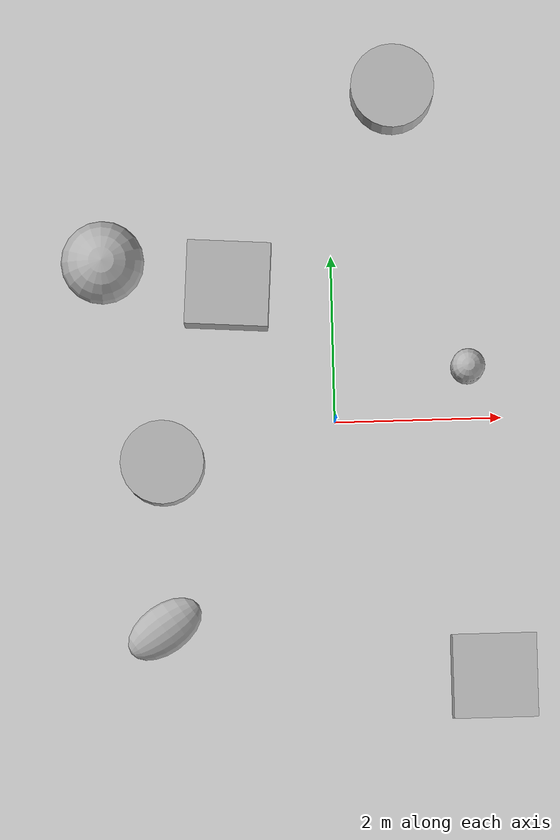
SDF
<sdf version='1.9'>
  <world name='empty'>
    <physics name='1ms' type='ignored'>
      <max_step_size>0.001</max_step_size>
      <real_time_factor>1</real_time_factor>
      <real_time_update_rate>1000</real_time_update_rate>
    </physics>
    <plugin name='gz::sim::systems::Physics' filename='ignition-gazebo-physics-system'/>
    <plugin name='gz::sim::systems::UserCommands' filename='ignition-gazebo-user-commands-system'/>
    <plugin name='gz::sim::systems::SceneBroadcaster' filename='ignition-gazebo-scene-broadcaster-system'/>
    <plugin name='gz::sim::systems::Contact' filename='ignition-gazebo-contact-system'/>
    <gravity>0 0 -9.8</gravity>
    <magnetic_field>6e-06 2.3e-05 -4.2e-05</magnetic_field>
    <atmosphere type='adiabatic'/>
    <scene>
      <ambient>0.4 0.4 0.4 1</ambient>
      <background>0.7 0.7 0.7 1</background>
      <shadows>true</shadows>
    </scene>
    <model name='ground_plane'>
      <static>true</static>
      <link name='link'>
        <collision name='collision'>
          <geometry>
            <plane>
              <normal>0 0 1</normal>
              <size>100 100</size>
            </plane>
          </geometry>
          <surface>
            <friction>
              <ode/>
            </friction>
            <bounce/>
            <contact/>
          </surface>
        </collision>
        <visual name='visual'>
          <geometry>
            <plane>
              <normal>0 0 1</normal>
              <size>100 100</size>
            </plane>
          </geometry>
          <material>
            <ambient>0.8 0.8 0.8 1</ambient>
            <diffuse>0.8 0.8 0.8 1</diffuse>
            <specular>0.8 0.8 0.8 1</specular>
          </material>
        </visual>
        <pose>0 0 0 0 -0 0</pose>
        <inertial>
          <pose>0 0 0 0 -0 0</pose>
          <mass>1</mass>
          <inertia>
            <ixx>1</ixx>
            <ixy>0</ixy>
            <ixz>0</ixz>
            <iyy>1</iyy>
            <iyz>0</iyz>
            <izz>1</izz>
          </inertia>
        </inertial>
        <enable_wind>false</enable_wind>
      </link>
      <pose>0 0 0 0 -0 0</pose>
      <self_collide>false</self_collide>
    </model>
    <model name='box'>
      <pose>1.80987 -3.10131 0.5 0 0 -0</pose>
      <link name='box_link'>
        <inertial>
          <inertia>
            <ixx>0.16666</ixx>
            <ixy>0</ixy>
            <ixz>0</ixz>
            <iyy>0.16666</iyy>
            <iyz>0</iyz>
            <izz>0.16666</izz>
          </inertia>
          <mass>1</mass>
          <pose>0 0 0 0 -0 0</pose>
        </inertial>
        <collision name='box_collision'>
          <geometry>
            <box>
              <size>1 1 1</size>
            </box>
          </geometry>
          <surface>
            <friction>
              <ode/>
            </friction>
            <bounce/>
            <contact/>
          </surface>
        </collision>
        <visual name='box_visual'>
          <geometry>
            <box>
              <size>1 1 1</size>
            </box>
          </geometry>
          <material>
            <ambient>0.3 0.3 0.3 1</ambient>
            <diffuse>0.7 0.7 0.7 1</diffuse>
            <specular>1 1 1 1</specular>
          </material>
        </visual>
        <pose>0 0 0 0 -0 0</pose>
        <enable_wind>false</enable_wind>
      </link>
      <static>false</static>
      <self_collide>false</self_collide>
    </model>
    <model name='cylinder'>
      <pose>0.780227 3.95895 0.499999 -0 0 0</pose>
      <link name='cylinder_link'>
        <inertial>
          <inertia>
            <ixx>0.14580000000000001</ixx>
            <ixy>0</ixy>
            <ixz>0</ixz>
            <iyy>0.14580000000000001</iyy>
            <iyz>0</iyz>
            <izz>0.125</izz>
          </inertia>
          <mass>1</mass>
          <pose>0 0 0 0 -0 0</pose>
        </inertial>
        <collision name='cylinder_collision'>
          <geometry>
            <cylinder>
              <radius>0.5</radius>
              <length>1</length>
            </cylinder>
          </geometry>
          <surface>
            <friction>
              <ode/>
            </friction>
            <bounce/>
            <contact/>
          </surface>
        </collision>
        <visual name='cylinder_visual'>
          <geometry>
            <cylinder>
              <radius>0.5</radius>
              <length>1</length>
            </cylinder>
          </geometry>
          <material>
            <ambient>0.3 0.3 0.3 1</ambient>
            <diffuse>0.7 0.7 0.7 1</diffuse>
            <specular>1 1 1 1</specular>
          </material>
        </visual>
        <pose>0 0 0 0 -0 0</pose>
        <enable_wind>false</enable_wind>
      </link>
      <static>false</static>
      <self_collide>false</self_collide>
    </model>
    <model name='sphere'>
      <pose>-2.74347 1.96697 0.5 0 -0 0</pose>
      <link name='sphere_link'>
        <inertial>
          <inertia>
            <ixx>0.10000000000000001</ixx>
            <ixy>0</ixy>
            <ixz>0</ixz>
            <iyy>0.10000000000000001</iyy>
            <iyz>0</iyz>
            <izz>0.10000000000000001</izz>
          </inertia>
          <mass>1</mass>
          <pose>0 0 0 0 -0 0</pose>
        </inertial>
        <collision name='sphere_collision'>
          <geometry>
            <sphere>
              <radius>0.5</radius>
            </sphere>
          </geometry>
          <surface>
            <friction>
              <ode/>
            </friction>
            <bounce/>
            <contact/>
          </surface>
        </collision>
        <visual name='sphere_visual'>
          <geometry>
            <sphere>
              <radius>0.5</radius>
            </sphere>
          </geometry>
          <material>
            <ambient>0.3 0.3 0.3 1</ambient>
            <diffuse>0.7 0.7 0.7 1</diffuse>
            <specular>1 1 1 1</specular>
          </material>
        </visual>
        <pose>0 0 0 0 -0 0</pose>
        <enable_wind>false</enable_wind>
      </link>
      <static>false</static>
      <self_collide>false</self_collide>
    </model>
    <model name='ellipsoid'>
      <pose>-2.11576 -2.43835 0.186668 1.5708 -1.37749 -0.971127</pose>
      <link name='ellipsoid_link'>
        <inertial>
          <inertia>
            <ixx>0.068000000000000005</ixx>
            <ixy>0</ixy>
            <ixz>0</ixz>
            <iyy>0.058000000000000003</iyy>
            <iyz>0</iyz>
            <izz>0.025999999999999999</izz>
          </inertia>
          <mass>1</mass>
          <pose>0 0 0 0 -0 0</pose>
        </inertial>
        <collision name='ellipsoid_collision'>
          <geometry>
            <ellipsoid>
              <radii>0.2 0.3 0.5</radii>
            </ellipsoid>
          </geometry>
          <surface>
            <friction>
              <ode/>
            </friction>
            <bounce/>
            <contact/>
          </surface>
        </collision>
        <visual name='ellipsoid_visual'>
          <geometry>
            <ellipsoid>
              <radii>0.2 0.3 0.5</radii>
            </ellipsoid>
          </geometry>
          <material>
            <ambient>0.3 0.3 0.3 1</ambient>
            <diffuse>0.7 0.7 0.7 1</diffuse>
            <specular>1 1 1 1</specular>
          </material>
        </visual>
        <pose>0 0 0 0 -0 0</pose>
        <enable_wind>false</enable_wind>
      </link>
      <static>false</static>
      <self_collide>false</self_collide>
    </model>
    <model name='capsule'>
      <pose>1.59844 0.60418 0.5 0 -0 0</pose>
      <link name='capsule_link'>
        <inertial>
          <inertia>
            <ixx>0.074153999999999998</ixx>
            <ixy>0</ixy>
            <ixz>0</ixz>
            <iyy>0.074153999999999998</iyy>
            <iyz>0</iyz>
            <izz>0.018769000000000001</izz>
          </inertia>
          <mass>1</mass>
          <pose>0 0 0 0 -0 0</pose>
        </inertial>
        <collision name='capsule_collision'>
          <geometry>
            <capsule>
              <radius>0.20000000000000001</radius>
              <length>0.59999999999999998</length>
            </capsule>
          </geometry>
          <surface>
            <friction>
              <ode/>
            </friction>
            <bounce/>
            <contact/>
          </surface>
        </collision>
        <visual name='capsule_visual'>
          <geometry>
            <capsule>
              <radius>0.20000000000000001</radius>
              <length>0.59999999999999998</length>
            </capsule>
          </geometry>
          <material>
            <ambient>0.3 0.3 0.3 1</ambient>
            <diffuse>0.7 0.7 0.7 1</diffuse>
            <specular>1 1 1 1</specular>
          </material>
        </visual>
        <pose>0 0 0 0 -0 0</pose>
        <enable_wind>false</enable_wind>
      </link>
      <static>false</static>
      <self_collide>false</self_collide>
    </model>
    <model name='cylinder_0'>
      <pose>-2.08206 -0.460448 0.499999 0 -0 -0</pose>
      <link name='cylinder_link'>
        <inertial>
          <inertia>
            <ixx>0.14580000000000001</ixx>
            <ixy>0</ixy>
            <ixz>0</ixz>
            <iyy>0.14580000000000001</iyy>
            <iyz>0</iyz>
            <izz>0.125</izz>
          </inertia>
          <mass>1</mass>
          <pose>0 0 0 0 -0 0</pose>
        </inertial>
        <collision name='cylinder_collision'>
          <geometry>
            <cylinder>
              <radius>0.5</radius>
              <length>1</length>
            </cylinder>
          </geometry>
          <surface>
            <friction>
              <ode/>
            </friction>
            <bounce/>
            <contact/>
          </surface>
        </collision>
        <visual name='cylinder_visual'>
          <geometry>
            <cylinder>
              <radius>0.5</radius>
              <length>1</length>
            </cylinder>
          </geometry>
          <material>
            <ambient>0.3 0.3 0.3 1</ambient>
            <diffuse>0.7 0.7 0.7 1</diffuse>
            <specular>1 1 1 1</specular>
          </material>
        </visual>
        <pose>0 0 0 0 -0 0</pose>
        <enable_wind>false</enable_wind>
      </link>
      <static>false</static>
      <self_collide>false</self_collide>
    </model>
    <model name='box_0'>
      <pose>-1.24701 1.65229 0.5 0 -0 -0.067036</pose>
      <link name='box_link'>
        <inertial>
          <inertia>
            <ixx>0.16666</ixx>
            <ixy>0</ixy>
            <ixz>0</ixz>
            <iyy>0.16666</iyy>
            <iyz>0</iyz>
            <izz>0.16666</izz>
          </inertia>
          <mass>1</mass>
          <pose>0 0 0 0 -0 0</pose>
        </inertial>
        <collision name='box_collision'>
          <geometry>
            <box>
              <size>1 1 1</size>
            </box>
          </geometry>
          <surface>
            <friction>
              <ode/>
            </friction>
            <bounce/>
            <contact/>
          </surface>
        </collision>
        <visual name='box_visual'>
          <geometry>
            <box>
              <size>1 1 1</size>
            </box>
          </geometry>
          <material>
            <ambient>0.3 0.3 0.3 1</ambient>
            <diffuse>0.7 0.7 0.7 1</diffuse>
            <specular>1 1 1 1</specular>
          </material>
        </visual>
        <pose>0 0 0 0 -0 0</pose>
        <enable_wind>false</enable_wind>
      </link>
      <static>false</static>
      <self_collide>false</self_collide>
    </model>
    <light name='sun' type='directional'>
      <pose>0 0 10 0 -0 0</pose>
      <cast_shadows>true</cast_shadows>
      <intensity>1</intensity>
      <direction>-0.5 0.1 -0.9</direction>
      <diffuse>0.8 0.8 0.8 1</diffuse>
      <specular>0.2 0.2 0.2 1</specular>
      <attenuation>
        <range>1000</range>
        <linear>0.01</linear>
        <constant>0.90000000000000002</constant>
        <quadratic>0.001</quadratic>
      </attenuation>
      <spot>
        <inner_angle>0</inner_angle>
        <outer_angle>0</outer_angle>
        <falloff>0</falloff>
      </spot>
    </light>
  </world>
</sdf>
